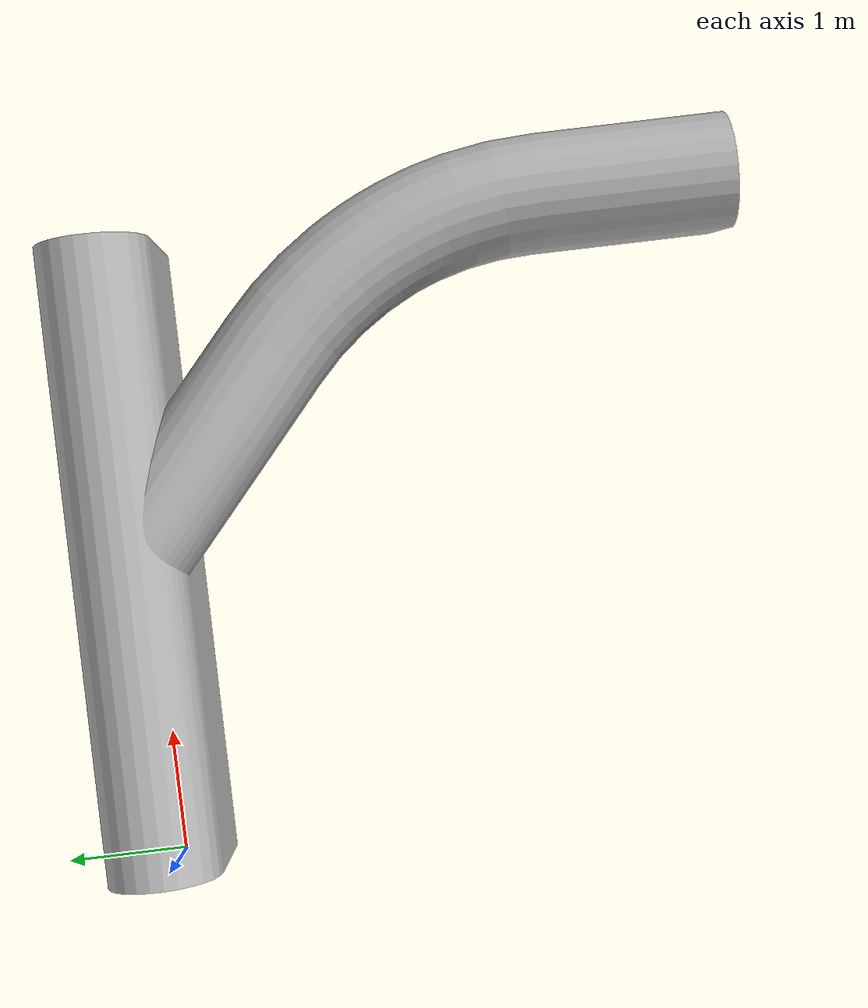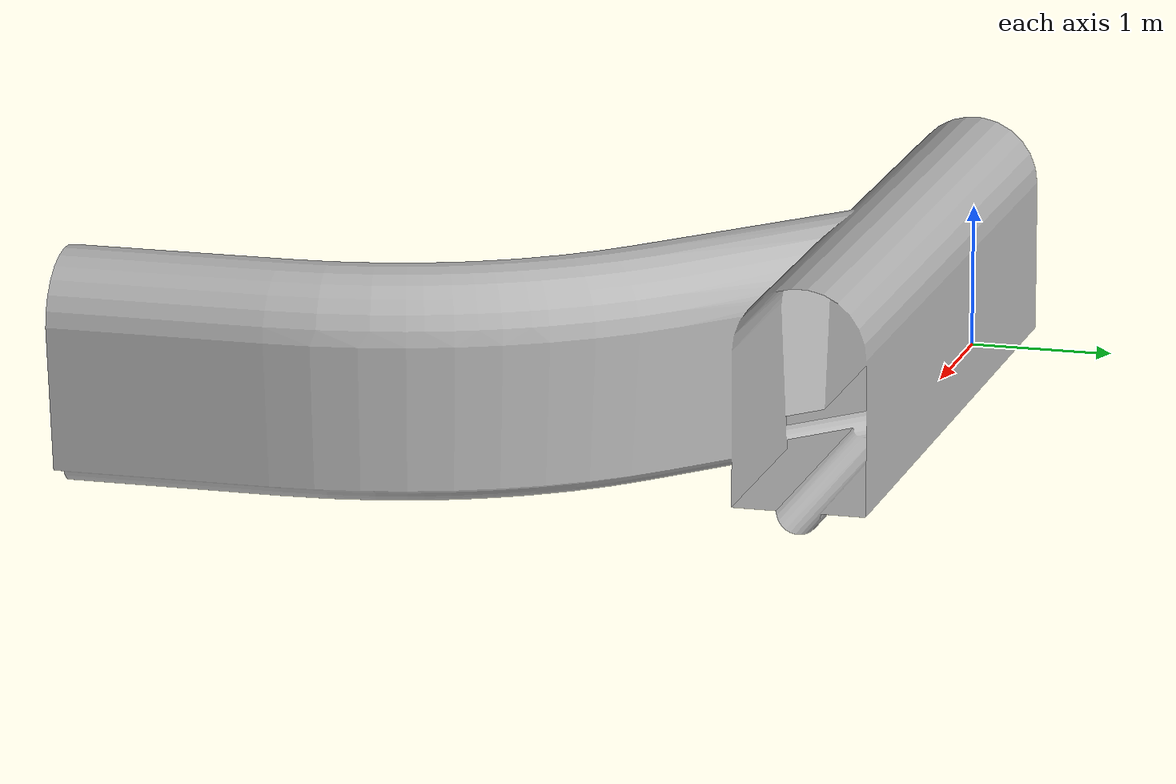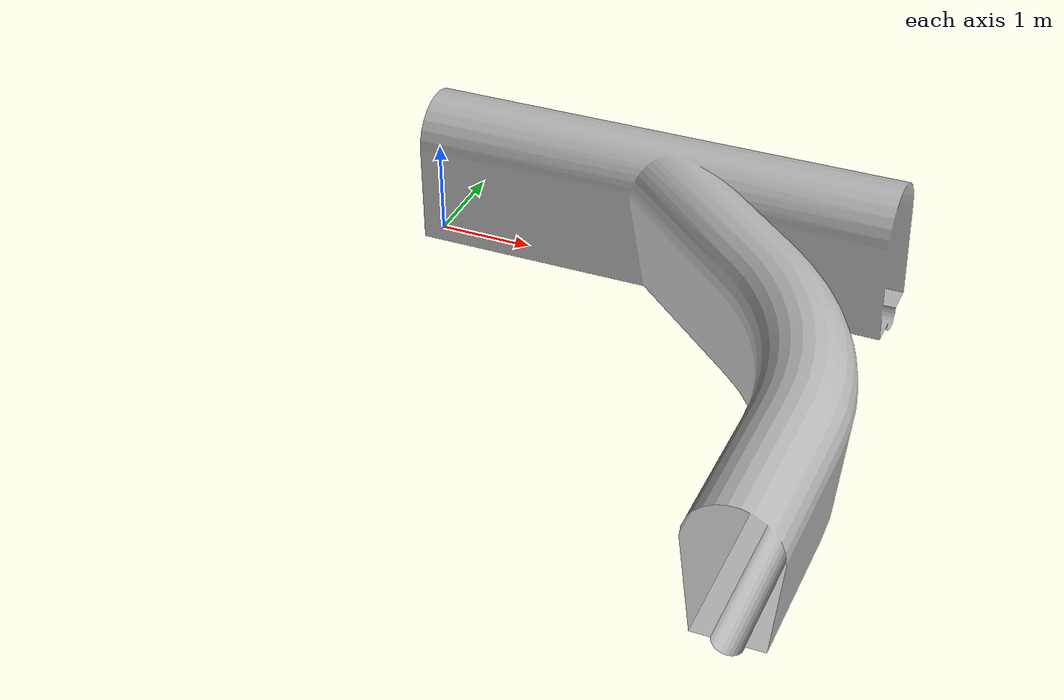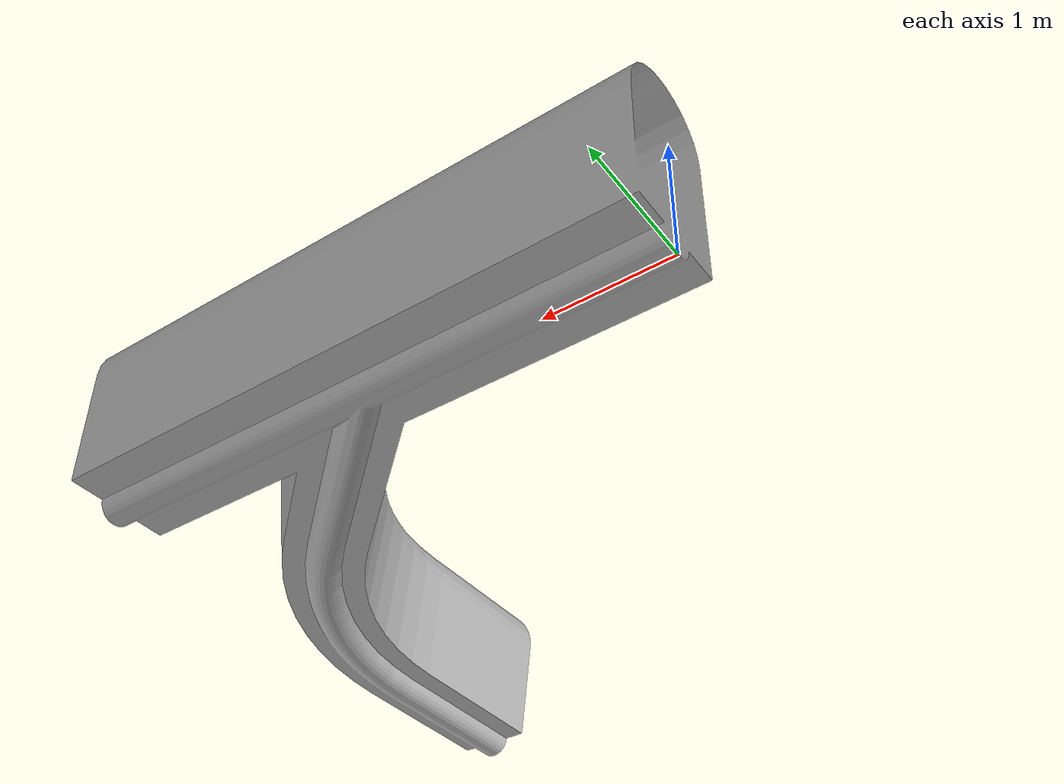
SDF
<?xml version="1.0" ?>
<sdf version="1.5">
  <model name="T130_T114A_gut30_K_5m_5m">
    <static>true</static>

   <link name="link">
      <collision name="collision">
        <geometry>
          <mesh>
            <uri>model://T130_T114A_gut30_K_5m_5m/meshes/T130_T114A_gut30_K_5m_5m.dae</uri>
          </mesh>
        </geometry>
      </collision>
      <visual name="visual">
        <geometry>
          <mesh>
            <uri>model://T130_T114A_gut30_K_5m_5m/meshes/T130_T114A_gut30_K_5m_5m.dae</uri>
          </mesh>
        </geometry>
      </visual>
    </link>
  </model>
</sdf>
